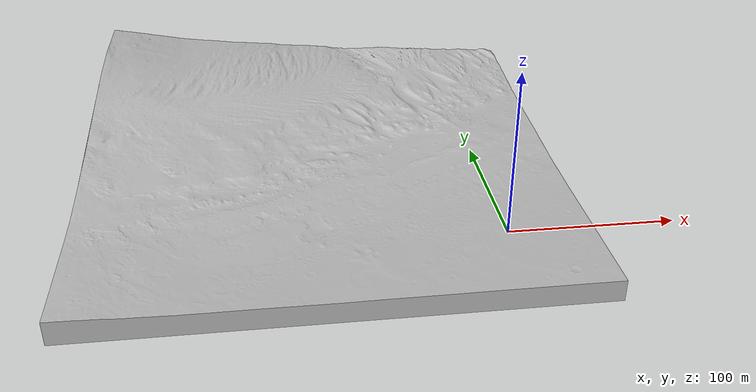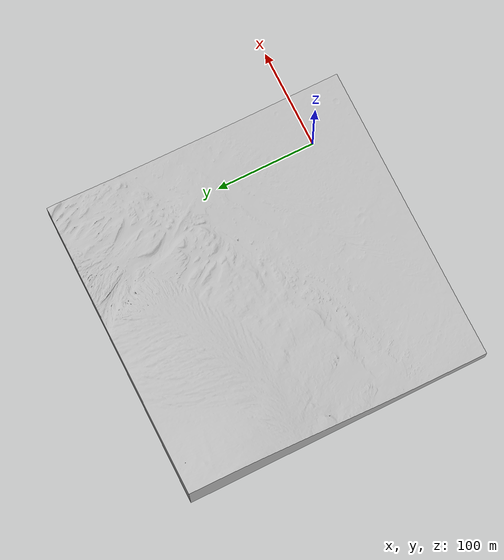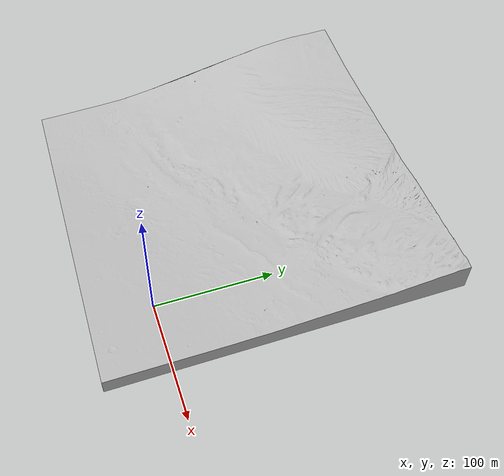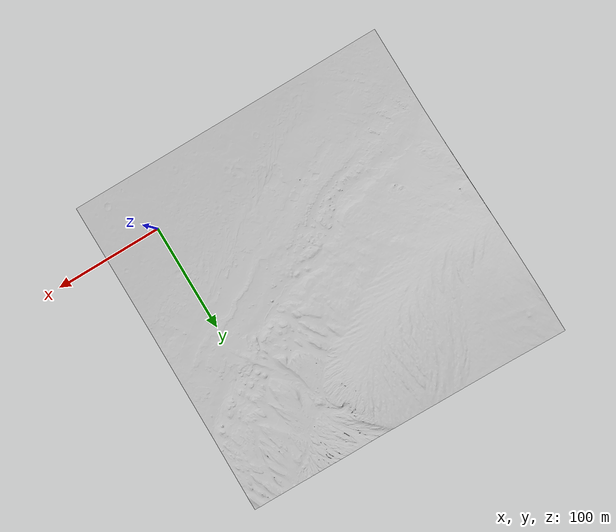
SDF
<?xml version="1.0" ?>
<sdf version="1.5">
  <world name="default">

    <gravity>0 0 -9.81</gravity>

    <scene>
      <shadows>0</shadows>
    </scene>

    <include>
      <uri>model://sun</uri>
    </include>

    <include>
      <uri>model://curiosity_path</uri>
      <name>curiosity_path</name>
      <pose>-100 100 14 0 0 0</pose>
    </include>

  </world>
</sdf>

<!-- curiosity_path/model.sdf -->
<sdf version="1.5">
  <model name="curiosity_path">
      <static>true</static>
      <link name='link'>
       <collision name="collision">
        <geometry>
            <mesh>
              <uri>model://curiosity_path/meshes/curiosity_path25k.stl</uri>
              <scale>1 1 1</scale>
            </mesh>
        </geometry>
        <surface>
          <contact>
             <collide_bitmask>0xffff</collide_bitmask>
          </contact>
          <friction>
            <ode>
              <mu>100</mu>
              <mu2>50</mu2>
            </ode>
          </friction>
        </surface>
      </collision>
        <visual name='visual'>
          <geometry>
            <mesh>
              <uri>model://curiosity_path/meshes/curiosity_path25k.dae</uri>
              <scale>1 1 1</scale>
            </mesh>
          </geometry>
        </visual>
      </link>
  </model>
</sdf>
